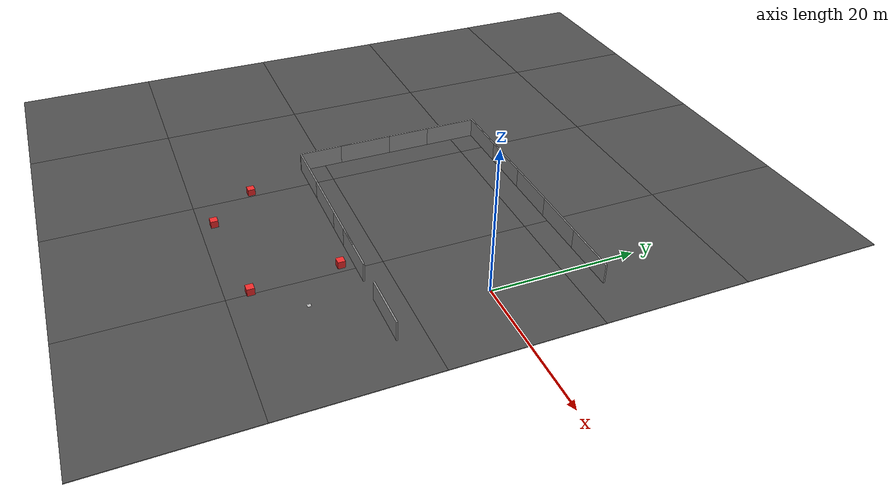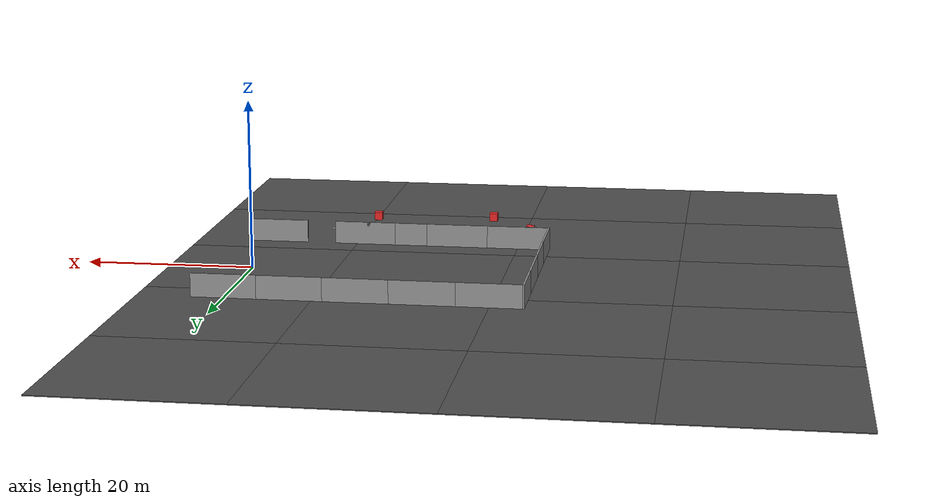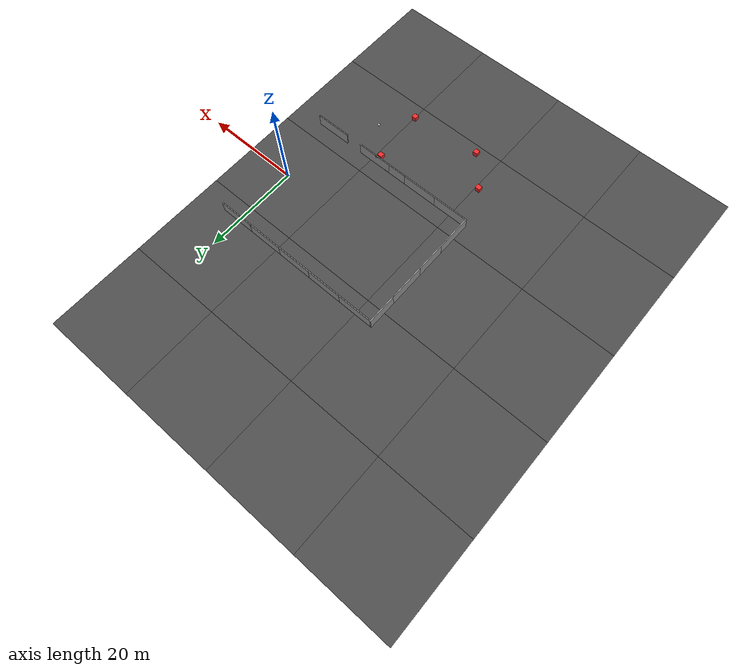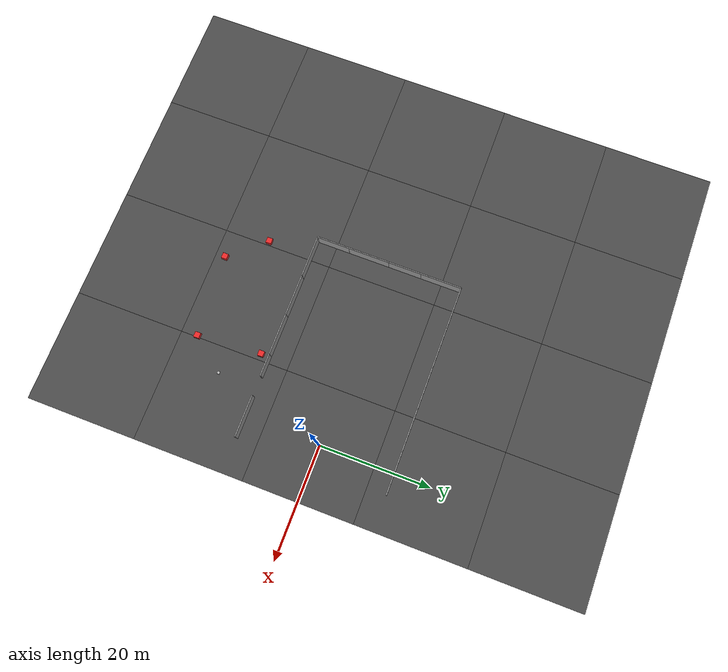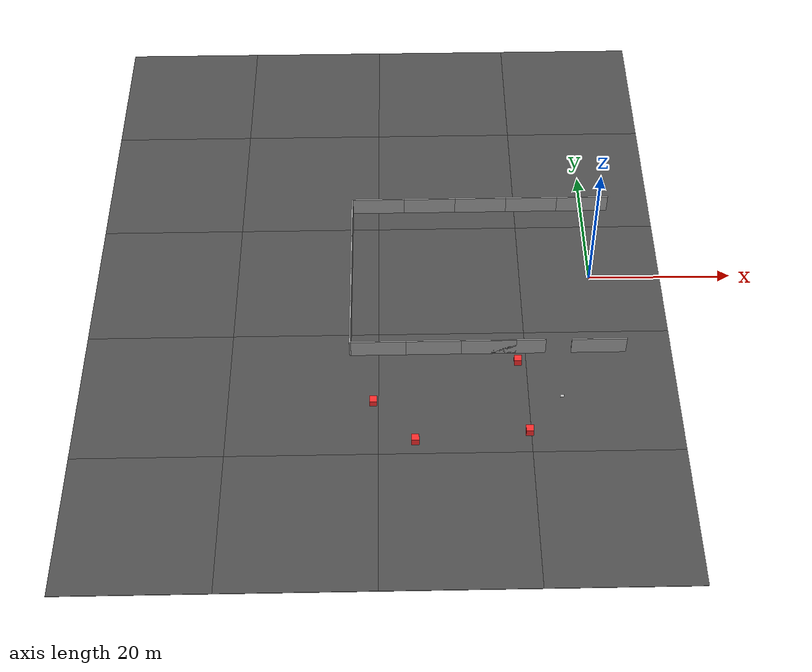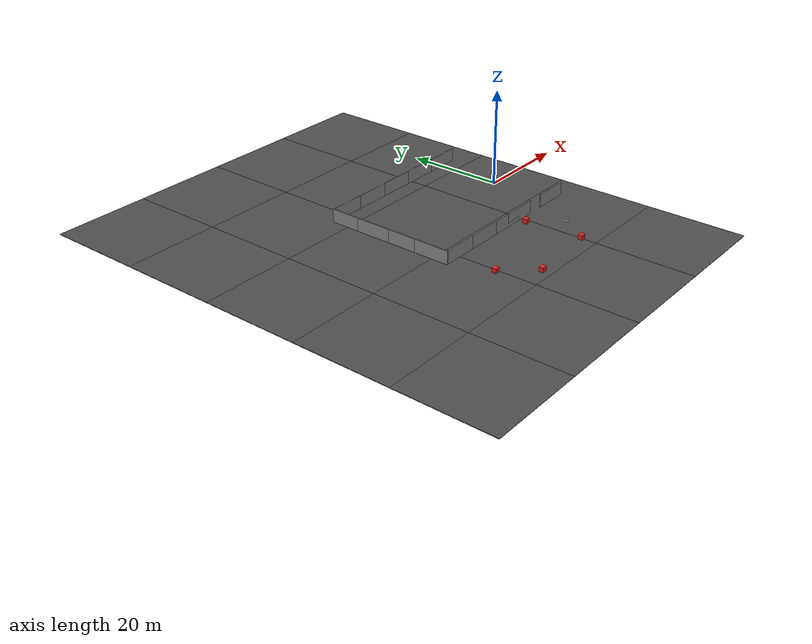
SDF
<sdf version="1.6">
 <world name="default">
  <model name="grey_wall">
   <static>1</static>
   <link name="link">
    <pose>0 0 1.4 0 -0 0</pose>
    <collision name="collision"><geometry><box><size>7.5 0.2 2.8</size></box></geometry></collision>
    <visual name="visual">
     <cast_shadows>0</cast_shadows>
     <geometry><box><size>7.5 0.2 2.8</size></box></geometry>
     <material>
      <script>
       <uri>model://grey_wall/materials/scripts</uri>
       <uri>model://grey_wall/materials/textures</uri>
       <name>vrc/grey_wall</name>
      </script>
     </material>
    </visual>
   </link>
   <pose>0 -13.5 0 0 -0 0</pose>
  </model>
  <model name="grey_wall_1">
   <static>1</static>
   <link name="link">
    <pose>0 0 1.4 0 -0 0</pose>
    <collision name="collision"><geometry><box><size>7.5 0.2 2.8</size></box></geometry></collision>
    <visual name="visual">
     <cast_shadows>0</cast_shadows>
     <geometry><box><size>7.5 0.2 2.8</size></box></geometry>
     <material>
      <script>
       <uri>model://grey_wall/materials/scripts</uri>
       <uri>model://grey_wall/materials/textures</uri>
       <name>vrc/grey_wall</name>
      </script>
     </material>
    </visual>
   </link>
   <pose>-11 -13.5 0 0 -0 0</pose>
  </model>
  <model name="grey_wall_3">
   <static>1</static>
   <link name="link">
    <pose>0 0 1.4 0 -0 0</pose>
    <collision name="collision"><geometry><box><size>7.5 0.2 2.8</size></box></geometry></collision>
    <visual name="visual">
     <cast_shadows>0</cast_shadows>
     <geometry><box><size>7.5 0.2 2.8</size></box></geometry>
     <material>
      <script>
       <uri>model://grey_wall/materials/scripts</uri>
       <uri>model://grey_wall/materials/textures</uri>
       <name>vrc/grey_wall</name>
      </script>
     </material>
    </visual>
   </link>
   <pose>0 13.5 0 0 -0 0</pose>
  </model>
  <model name="grey_wall_4">
   <static>1</static>
   <link name="link">
    <pose>0 0 1.4 0 -0 0</pose>
    <collision name="collision"><geometry><box><size>7.5 0.2 2.8</size></box></geometry></collision>
    <visual name="visual">
     <cast_shadows>0</cast_shadows>
     <geometry><box><size>7.5 0.2 2.8</size></box></geometry>
     <material>
      <script>
       <uri>model://grey_wall/materials/scripts</uri>
       <uri>model://grey_wall/materials/textures</uri>
       <name>vrc/grey_wall</name>
      </script>
     </material>
    </visual>
   </link>
   <pose>-7.5 13.5 0 0 -0 0</pose>
  </model>
  <model name="grey_wall_8">
   <static>1</static>
   <link name="link">
    <pose>0 0 1.4 0 -0 0</pose>
    <collision name="collision"><geometry><box><size>7.5 0.2 2.8</size></box></geometry></collision>
    <visual name="visual">
     <cast_shadows>0</cast_shadows>
     <geometry><box><size>7.5 0.2 2.8</size></box></geometry>
     <material>
      <script>
       <uri>model://grey_wall/materials/scripts</uri>
       <uri>model://grey_wall/materials/textures</uri>
       <name>vrc/grey_wall</name>
      </script>
     </material>
    </visual>
   </link>
   <pose>-15 -13.5 0 0 -0 0</pose>
  </model>
  <model name="grey_wall_9">
   <static>1</static>
   <link name="link">
    <pose>0 0 1.4 0 -0 0</pose>
    <collision name="collision"><geometry><box><size>7.5 0.2 2.8</size></box></geometry></collision>
    <visual name="visual">
     <cast_shadows>0</cast_shadows>
     <geometry><box><size>7.5 0.2 2.8</size></box></geometry>
     <material>
      <script>
       <uri>model://grey_wall/materials/scripts</uri>
       <uri>model://grey_wall/materials/textures</uri>
       <name>vrc/grey_wall</name>
      </script>
     </material>
    </visual>
   </link>
   <pose>-22.5 -13.5 0 0 -0 0</pose>
  </model>
  <model name="grey_wall_10">
   <static>1</static>
   <link name="link">
    <pose>0 0 1.4 0 -0 0</pose>
    <collision name="collision"><geometry><box><size>7.5 0.2 2.8</size></box></geometry></collision>
    <visual name="visual">
     <cast_shadows>0</cast_shadows>
     <geometry><box><size>7.5 0.2 2.8</size></box></geometry>
     <material>
      <script>
       <uri>model://grey_wall/materials/scripts</uri>
       <uri>model://grey_wall/materials/textures</uri>
       <name>vrc/grey_wall</name>
      </script>
     </material>
    </visual>
   </link>
   <pose>-30 -13.5 0 0 -0 0</pose>
  </model>
  <model name="grey_wall_14">
   <static>1</static>
   <link name="link">
    <pose>0 0 1.4 0 -0 0</pose>
    <collision name="collision"><geometry><box><size>7.5 0.2 2.8</size></box></geometry></collision>
    <visual name="visual">
     <cast_shadows>0</cast_shadows>
     <geometry><box><size>7.5 0.2 2.8</size></box></geometry>
     <material>
      <script>
       <uri>model://grey_wall/materials/scripts</uri>
       <uri>model://grey_wall/materials/textures</uri>
       <name>vrc/grey_wall</name>
      </script>
     </material>
    </visual>
   </link>
   <pose>-15 13.5 0 0 -0 0</pose>
  </model>
  <model name="grey_wall_15">
   <static>1</static>
   <link name="link">
    <pose>0 0 1.4 0 -0 0</pose>
    <collision name="collision"><geometry><box><size>7.5 0.2 2.8</size></box></geometry></collision>
    <visual name="visual">
     <cast_shadows>0</cast_shadows>
     <geometry><box><size>7.5 0.2 2.8</size></box></geometry>
     <material>
      <script>
       <uri>model://grey_wall/materials/scripts</uri>
       <uri>model://grey_wall/materials/textures</uri>
       <name>vrc/grey_wall</name>
      </script>
     </material>
    </visual>
   </link>
   <pose>-22.5 13.5 0 0 -0 0</pose>
  </model>
  <model name="grey_wall_16">
   <static>1</static>
   <link name="link">
    <pose>0 0 1.4 0 -0 0</pose>
    <collision name="collision"><geometry><box><size>7.5 0.2 2.8</size></box></geometry></collision>
    <visual name="visual">
     <cast_shadows>0</cast_shadows>
     <geometry><box><size>7.5 0.2 2.8</size></box></geometry>
     <material>
      <script>
       <uri>model://grey_wall/materials/scripts</uri>
       <uri>model://grey_wall/materials/textures</uri>
       <name>vrc/grey_wall</name>
      </script>
     </material>
    </visual>
   </link>
   <pose>-30 13.5 0 0 -0 0</pose>
  </model>
  <model name="grey_wall_21">
   <static>1</static>
   <link name="link">
    <pose>0 0 1.4 0 -0 0</pose>
    <collision name="collision"><geometry><box><size>7.5 0.2 2.8</size></box></geometry></collision>
    <visual name="visual">
     <cast_shadows>0</cast_shadows>
     <geometry><box><size>7.5 0.2 2.8</size></box></geometry>
     <material>
      <script>
       <uri>model://grey_wall/materials/scripts</uri>
       <uri>model://grey_wall/materials/textures</uri>
       <name>vrc/grey_wall</name>
      </script>
     </material>
    </visual>
   </link>
   <pose>-33.85 3.75 0 0 -0 1.5708</pose>
  </model>
  <model name="grey_wall_22">
   <static>1</static>
   <link name="link">
    <pose>0 0 1.4 0 -0 0</pose>
    <collision name="collision"><geometry><box><size>7.5 0.2 2.8</size></box></geometry></collision>
    <visual name="visual">
     <cast_shadows>0</cast_shadows>
     <geometry><box><size>7.5 0.2 2.8</size></box></geometry>
     <material>
      <script>
       <uri>model://grey_wall/materials/scripts</uri>
       <uri>model://grey_wall/materials/textures</uri>
       <name>vrc/grey_wall</name>
      </script>
     </material>
    </visual>
   </link>
   <pose>-33.85 9.85 0 0 -0 1.5708</pose>
  </model>
  <model name="grey_wall_23">
   <static>1</static>
   <link name="link">
    <pose>0 0 1.4 0 -0 0</pose>
    <collision name="collision"><geometry><box><size>7.5 0.2 2.8</size></box></geometry></collision>
    <visual name="visual">
     <cast_shadows>0</cast_shadows>
     <geometry><box><size>7.5 0.2 2.8</size></box></geometry>
     <material>
      <script>
       <uri>model://grey_wall/materials/scripts</uri>
       <uri>model://grey_wall/materials/textures</uri>
       <name>vrc/grey_wall</name>
      </script>
     </material>
    </visual>
   </link>
   <pose>-33.85 -3.75 0 0 -0 1.5708</pose>
  </model>
  <model name="grey_wall_24">
   <static>1</static>
   <link name="link">
    <pose>0 0 1.4 0 -0 0</pose>
    <collision name="collision"><geometry><box><size>7.5 0.2 2.8</size></box></geometry></collision>
    <visual name="visual">
     <cast_shadows>0</cast_shadows>
     <geometry><box><size>7.5 0.2 2.8</size></box></geometry>
     <material>
      <script>
       <uri>model://grey_wall/materials/scripts</uri>
       <uri>model://grey_wall/materials/textures</uri>
       <name>vrc/grey_wall</name>
      </script>
     </material>
    </visual>
   </link>
   <pose>-33.85 -9.85 0 0 -0 1.5708</pose>
  </model>
  <model name="asphalt_plane">
   <static>1</static>
   <link name="link">
    <collision name="collision"><geometry><box><size>20 20 0.1</size></box></geometry></collision>
    <visual name="visual">
     <cast_shadows>0</cast_shadows>
     <geometry><box><size>20 20 0.1</size></box></geometry>
     <material>
      <script>
       <uri>model://asphalt_plane/materials/scripts</uri>
       <uri>model://asphalt_plane/materials/textures</uri>
       <name>vrc/asphalt</name>
      </script>
     </material>
    </visual>
   </link>
  </model>
  <model name="asphalt_plane_0">
   <static>1</static>
   <link name="link">
    <collision name="collision"><geometry><box><size>20 20 0.1</size></box></geometry></collision>
    <visual name="visual">
     <cast_shadows>0</cast_shadows>
     <geometry><box><size>20 20 0.1</size></box></geometry>
     <material>
      <script>
       <uri>model://asphalt_plane/materials/scripts</uri>
       <uri>model://asphalt_plane/materials/textures</uri>
       <name>vrc/asphalt</name>
      </script>
     </material>
    </visual>
   </link>
   <pose>-20 0 0 0 -0 0</pose>
  </model>
  <model name="asphalt_plane_1">
   <static>1</static>
   <link name="link">
    <collision name="collision"><geometry><box><size>20 20 0.1</size></box></geometry></collision>
    <visual name="visual">
     <cast_shadows>0</cast_shadows>
     <geometry><box><size>20 20 0.1</size></box></geometry>
     <material>
      <script>
       <uri>model://asphalt_plane/materials/scripts</uri>
       <uri>model://asphalt_plane/materials/textures</uri>
       <name>vrc/asphalt</name>
      </script>
     </material>
    </visual>
   </link>
   <pose>-40 0 0 0 -0 0</pose>
  </model>
  <model name="asphalt_plane_4">
   <static>1</static>
   <link name="link">
    <collision name="collision"><geometry><box><size>20 20 0.1</size></box></geometry></collision>
    <visual name="visual">
     <cast_shadows>0</cast_shadows>
     <geometry><box><size>20 20 0.1</size></box></geometry>
     <material>
      <script>
       <uri>model://asphalt_plane/materials/scripts</uri>
       <uri>model://asphalt_plane/materials/textures</uri>
       <name>vrc/asphalt</name>
      </script>
     </material>
    </visual>
   </link>
   <pose>0 -20 0 0 -0 0</pose>
  </model>
  <model name="asphalt_plane_5">
   <static>1</static>
   <link name="link">
    <collision name="collision"><geometry><box><size>20 20 0.1</size></box></geometry></collision>
    <visual name="visual">
     <cast_shadows>0</cast_shadows>
     <geometry><box><size>20 20 0.1</size></box></geometry>
     <material>
      <script>
       <uri>model://asphalt_plane/materials/scripts</uri>
       <uri>model://asphalt_plane/materials/textures</uri>
       <name>vrc/asphalt</name>
      </script>
     </material>
    </visual>
   </link>
   <pose>-20 -20 0 0 -0 0</pose>
  </model>
  <model name="asphalt_plane_6">
   <static>1</static>
   <link name="link">
    <collision name="collision"><geometry><box><size>20 20 0.1</size></box></geometry></collision>
    <visual name="visual">
     <cast_shadows>0</cast_shadows>
     <geometry><box><size>20 20 0.1</size></box></geometry>
     <material>
      <script>
       <uri>model://asphalt_plane/materials/scripts</uri>
       <uri>model://asphalt_plane/materials/textures</uri>
       <name>vrc/asphalt</name>
      </script>
     </material>
    </visual>
   </link>
   <pose>-40 -20 0 0 -0 0</pose>
  </model>
  <model name="asphalt_plane_9">
   <static>1</static>
   <link name="link">
    <collision name="collision"><geometry><box><size>20 20 0.1</size></box></geometry></collision>
    <visual name="visual">
     <cast_shadows>0</cast_shadows>
     <geometry><box><size>20 20 0.1</size></box></geometry>
     <material>
      <script>
       <uri>model://asphalt_plane/materials/scripts</uri>
       <uri>model://asphalt_plane/materials/textures</uri>
       <name>vrc/asphalt</name>
      </script>
     </material>
    </visual>
   </link>
   <pose>-40 20 0 0 -0 0</pose>
  </model>
  <model name="asphalt_plane_10">
   <static>1</static>
   <link name="link">
    <collision name="collision"><geometry><box><size>20 20 0.1</size></box></geometry></collision>
    <visual name="visual">
     <cast_shadows>0</cast_shadows>
     <geometry><box><size>20 20 0.1</size></box></geometry>
     <material>
      <script>
       <uri>model://asphalt_plane/materials/scripts</uri>
       <uri>model://asphalt_plane/materials/textures</uri>
       <name>vrc/asphalt</name>
      </script>
     </material>
    </visual>
   </link>
   <pose>-20 20 0 0 -0 0</pose>
  </model>
  <model name="asphalt_plane_11">
   <static>1</static>
   <link name="link">
    <collision name="collision"><geometry><box><size>20 20 0.1</size></box></geometry></collision>
    <visual name="visual">
     <cast_shadows>0</cast_shadows>
     <geometry><box><size>20 20 0.1</size></box></geometry>
     <material>
      <script>
       <uri>model://asphalt_plane/materials/scripts</uri>
       <uri>model://asphalt_plane/materials/textures</uri>
       <name>vrc/asphalt</name>
      </script>
     </material>
    </visual>
   </link>
   <pose>0 20 0 0 -0 0</pose>
  </model>
  <model name="yellow_point">
   <static>1</static>
   <link name="link">
    <collision name="collision">
     <geometry><plane><normal>0 0 1</normal><size>0.5 0.5</size></plane></geometry>
     <surface><friction><ode><mu>100</mu><mu2>50</mu2></ode></friction></surface>
    </collision>
    <visual name="visual">
     <cast_shadows>0</cast_shadows>
     <geometry><plane><normal>0 0 1</normal><size>0.5 0.5</size></plane></geometry>
     <material>
      <script>
       <uri>model://yellow_point/materials/scripts</uri>
       <uri>model://yellow_point/materials/textures/</uri>
       <name>MyGroundPlane/Image</name>
      </script>
     </material>
    </visual>
   </link>
   <pose>-5.5 -21 0.06 0 -0 0</pose>
  </model>
  <model name="asphalt_plane_20">
   <static>1</static>
   <link name="link">
    <collision name="collision"><geometry><box><size>20 20 0.1</size></box></geometry></collision>
    <visual name="visual">
     <cast_shadows>0</cast_shadows>
     <geometry><box><size>20 20 0.1</size></box></geometry>
     <material>
      <script>
       <uri>model://asphalt_plane/materials/scripts</uri>
       <uri>model://asphalt_plane/materials/textures</uri>
       <name>vrc/asphalt</name>
      </script>
     </material>
    </visual>
   </link>
   <pose>0 -40 0 0 -0 0</pose>
  </model>
  <model name="asphalt_plane_21">
   <static>1</static>
   <link name="link">
    <collision name="collision"><geometry><box><size>20 20 0.1</size></box></geometry></collision>
    <visual name="visual">
     <cast_shadows>0</cast_shadows>
     <geometry><box><size>20 20 0.1</size></box></geometry>
     <material>
      <script>
       <uri>model://asphalt_plane/materials/scripts</uri>
       <uri>model://asphalt_plane/materials/textures</uri>
       <name>vrc/asphalt</name>
      </script>
     </material>
    </visual>
   </link>
   <pose>-20 -40 0 0 -0 0</pose>
  </model>
  <model name="asphalt_plane_22">
   <static>1</static>
   <link name="link">
    <collision name="collision"><geometry><box><size>20 20 0.1</size></box></geometry></collision>
    <visual name="visual">
     <cast_shadows>0</cast_shadows>
     <geometry><box><size>20 20 0.1</size></box></geometry>
     <material>
      <script>
       <uri>model://asphalt_plane/materials/scripts</uri>
       <uri>model://asphalt_plane/materials/textures</uri>
       <name>vrc/asphalt</name>
      </script>
     </material>
    </visual>
   </link>
   <pose>-40 -40 0 0 -0 0</pose>
  </model>
  <model name="asphalt_plane_23">
   <static>1</static>
   <link name="link">
    <collision name="collision"><geometry><box><size>20 20 0.1</size></box></geometry></collision>
    <visual name="visual">
     <cast_shadows>0</cast_shadows>
     <geometry><box><size>20 20 0.1</size></box></geometry>
     <material>
      <script>
       <uri>model://asphalt_plane/materials/scripts</uri>
       <uri>model://asphalt_plane/materials/textures</uri>
       <name>vrc/asphalt</name>
      </script>
     </material>
    </visual>
   </link>
   <pose>-60 -40 0 0 -0 0</pose>
  </model>
  <model name="asphalt_plane_24">
   <static>1</static>
   <link name="link">
    <collision name="collision"><geometry><box><size>20 20 0.1</size></box></geometry></collision>
    <visual name="visual">
     <cast_shadows>0</cast_shadows>
     <geometry><box><size>20 20 0.1</size></box></geometry>
     <material>
      <script>
       <uri>model://asphalt_plane/materials/scripts</uri>
       <uri>model://asphalt_plane/materials/textures</uri>
       <name>vrc/asphalt</name>
      </script>
     </material>
    </visual>
   </link>
   <pose>-60 -20 0 0 -0 0</pose>
  </model>
  <model name="asphalt_plane_25">
   <static>1</static>
   <link name="link">
    <collision name="collision"><geometry><box><size>20 20 0.1</size></box></geometry></collision>
    <visual name="visual">
     <cast_shadows>0</cast_shadows>
     <geometry><box><size>20 20 0.1</size></box></geometry>
     <material>
      <script>
       <uri>model://asphalt_plane/materials/scripts</uri>
       <uri>model://asphalt_plane/materials/textures</uri>
       <name>vrc/asphalt</name>
      </script>
     </material>
    </visual>
   </link>
   <pose>-60 0 0 0 -0 0</pose>
  </model>
  <model name="asphalt_plane_26">
   <static>1</static>
   <link name="link">
    <collision name="collision"><geometry><box><size>20 20 0.1</size></box></geometry></collision>
    <visual name="visual">
     <cast_shadows>0</cast_shadows>
     <geometry><box><size>20 20 0.1</size></box></geometry>
     <material>
      <script>
       <uri>model://asphalt_plane/materials/scripts</uri>
       <uri>model://asphalt_plane/materials/textures</uri>
       <name>vrc/asphalt</name>
      </script>
     </material>
    </visual>
   </link>
   <pose>-60 20 0 0 -0 0</pose>
  </model>
  <model name="asphalt_plane_27">
   <static>1</static>
   <link name="link">
    <collision name="collision"><geometry><box><size>20 20 0.1</size></box></geometry></collision>
    <visual name="visual">
     <cast_shadows>0</cast_shadows>
     <geometry><box><size>20 20 0.1</size></box></geometry>
     <material>
      <script>
       <uri>model://asphalt_plane/materials/scripts</uri>
       <uri>model://asphalt_plane/materials/textures</uri>
       <name>vrc/asphalt</name>
      </script>
     </material>
    </visual>
   </link>
   <pose>-60 40 0 0 -0 0</pose>
  </model>
  <model name="asphalt_plane_28">
   <static>1</static>
   <link name="link">
    <collision name="collision"><geometry><box><size>20 20 0.1</size></box></geometry></collision>
    <visual name="visual">
     <cast_shadows>0</cast_shadows>
     <geometry><box><size>20 20 0.1</size></box></geometry>
     <material>
      <script>
       <uri>model://asphalt_plane/materials/scripts</uri>
       <uri>model://asphalt_plane/materials/textures</uri>
       <name>vrc/asphalt</name>
      </script>
     </material>
    </visual>
   </link>
   <pose>-40 40 0 0 -0 0</pose>
  </model>
  <model name="asphalt_plane_29">
   <static>1</static>
   <link name="link">
    <collision name="collision"><geometry><box><size>20 20 0.1</size></box></geometry></collision>
    <visual name="visual">
     <cast_shadows>0</cast_shadows>
     <geometry><box><size>20 20 0.1</size></box></geometry>
     <material>
      <script>
       <uri>model://asphalt_plane/materials/scripts</uri>
       <uri>model://asphalt_plane/materials/textures</uri>
       <name>vrc/asphalt</name>
      </script>
     </material>
    </visual>
   </link>
   <pose>-20 40 0 0 -0 0</pose>
  </model>
  <model name="asphalt_plane_30">
   <static>1</static>
   <link name="link">
    <collision name="collision"><geometry><box><size>20 20 0.1</size></box></geometry></collision>
    <visual name="visual">
     <cast_shadows>0</cast_shadows>
     <geometry><box><size>20 20 0.1</size></box></geometry>
     <material>
      <script>
       <uri>model://asphalt_plane/materials/scripts</uri>
       <uri>model://asphalt_plane/materials/textures</uri>
       <name>vrc/asphalt</name>
      </script>
     </material>
    </visual>
   </link>
   <pose>0 40 0 0 -0 0</pose>
  </model>
  <model name="54m_redline_0">
   <static>1</static>
   <link name="link">
    <collision name="collision">
     <geometry><plane><normal>0 0 1</normal><size>59.3 0.1</size></plane></geometry>
     <surface><friction><ode><mu>100</mu><mu2>50</mu2></ode></friction></surface>
    </collision>
    <visual name="visual">
     <cast_shadows>0</cast_shadows>
     <geometry><plane><normal>0 0 1</normal><size>59.3 0.1</size></plane></geometry>
     <material>
      <script>
       <uri>model://54m_redline/materials/scripts</uri>
       <uri>model://54m_redline/materials/textures/</uri>
       <name>MyGroundPlane/Image</name>
      </script>
     </material>
    </visual>
   </link>
   <pose>-49 -2.6 0.06 0 -0 1.5707</pose>
  </model>
  <model name="unit_box_0_clone_clone_0">
   <link name="link">
    <inertial>
     <mass>1</mass>
     <inertia>
      <ixx>0.166667</ixx>
      <ixy>0</ixy>
      <ixz>0</ixz>
      <iyy>0.166667</iyy>
      <iyz>0</iyz>
      <izz>0.166667</izz>
     </inertia>
    </inertial>
    <visual name="visual">
     <geometry><box><size>1 1 1</size></box></geometry>
     <material>
      <script><name>Gazebo/Grey</name><uri>file://media/materials/scripts/gazebo.material</uri></script>
      <shader type="pixel"><normal_map>__default__</normal_map></shader>
      <ambient>0.937 0.161 0.161 1</ambient>
      <diffuse>0.937 0.161 0.161 1</diffuse>
      <specular>0.937 0.161 0.161 1</specular>
      <emissive>0.937 0.161 0.161 1</emissive>
     </material>
    </visual>
    <collision name="collision">
     <geometry><box><size>1 1 1</size></box></geometry>
     <surface>
      <friction>
       <ode><mu>1</mu><mu2>1</mu2><fdir1>0 0 0</fdir1><slip1>0</slip1><slip2>0</slip2></ode>
       <torsional>
        <coefficient>1</coefficient>
        <patch_radius>0</patch_radius>
        <surface_radius>0</surface_radius>
        <use_patch_radius>1</use_patch_radius>
        <ode><slip>0</slip></ode>
       </torsional>
      </friction>
      <bounce><restitution_coefficient>0</restitution_coefficient><threshold>1e+06</threshold></bounce>
      <contact>
       <collide_without_contact>0</collide_without_contact>
       <collide_without_contact_bitmask>1</collide_without_contact_bitmask>
       <collide_bitmask>1</collide_bitmask>
       <ode>
        <soft_cfm>0</soft_cfm>
        <soft_erp>0.2</soft_erp>
        <kp>1e+13</kp>
        <kd>1</kd>
        <max_vel>0.01</max_vel>
        <min_depth>0</min_depth>
       </ode>
       <bullet>
        <split_impulse>1</split_impulse>
        <split_impulse_penetration_threshold>-0.01</split_impulse_penetration_threshold>
        <soft_cfm>0</soft_cfm>
        <soft_erp>0.2</soft_erp>
        <kp>1e+13</kp>
        <kd>1</kd>
       </bullet>
      </contact>
     </surface>
    </collision>
   </link>
   <static>0</static>
   <pose>-30.6903 -21.7797 0.5 0 -0 0</pose>
  </model>
  <model name="unit_box_0_clone_clone_4_clone">
   <link name="link">
    <inertial>
     <mass>1</mass>
     <inertia>
      <ixx>0.166667</ixx>
      <ixy>0</ixy>
      <ixz>0</ixz>
      <iyy>0.166667</iyy>
      <iyz>0</iyz>
      <izz>0.166667</izz>
     </inertia>
    </inertial>
    <visual name="visual">
     <geometry><box><size>1 1 1</size></box></geometry>
     <material>
      <script><name>Gazebo/Grey</name><uri>file://media/materials/scripts/gazebo.material</uri></script>
      <shader type="pixel"><normal_map>__default__</normal_map></shader>
      <ambient>0.937 0.161 0.161 1</ambient>
      <diffuse>0.937 0.161 0.161 1</diffuse>
      <specular>0.937 0.161 0.161 1</specular>
      <emissive>0.937 0.161 0.161 1</emissive>
     </material>
    </visual>
    <collision name="collision">
     <geometry><box><size>1 1 1</size></box></geometry>
     <surface>
      <friction>
       <ode><mu>1</mu><mu2>1</mu2><fdir1>0 0 0</fdir1><slip1>0</slip1><slip2>0</slip2></ode>
       <torsional>
        <coefficient>1</coefficient>
        <patch_radius>0</patch_radius>
        <surface_radius>0</surface_radius>
        <use_patch_radius>1</use_patch_radius>
        <ode><slip>0</slip></ode>
       </torsional>
      </friction>
      <bounce><restitution_coefficient>0</restitution_coefficient><threshold>1e+06</threshold></bounce>
      <contact>
       <collide_without_contact>0</collide_without_contact>
       <collide_without_contact_bitmask>1</collide_without_contact_bitmask>
       <collide_bitmask>1</collide_bitmask>
       <ode>
        <soft_cfm>0</soft_cfm>
        <soft_erp>0.2</soft_erp>
        <kp>1e+13</kp>
        <kd>1</kd>
        <max_vel>0.01</max_vel>
        <min_depth>0</min_depth>
       </ode>
       <bullet>
        <split_impulse>1</split_impulse>
        <split_impulse_penetration_threshold>-0.01</split_impulse_penetration_threshold>
        <soft_cfm>0</soft_cfm>
        <soft_erp>0.2</soft_erp>
        <kp>1e+13</kp>
        <kd>1</kd>
       </bullet>
      </contact>
     </surface>
    </collision>
   </link>
   <static>0</static>
   <pose>-10.2282 -26.9155 0.549995 0 1e-05 -2e-06</pose>
  </model>
  <model name="unit_box_0_clone_clone_4_clone_0">
   <link name="link">
    <inertial>
     <mass>1</mass>
     <inertia>
      <ixx>0.166667</ixx>
      <ixy>0</ixy>
      <ixz>0</ixz>
      <iyy>0.166667</iyy>
      <iyz>0</iyz>
      <izz>0.166667</izz>
     </inertia>
    </inertial>
    <visual name="visual">
     <geometry><box><size>1 1 1</size></box></geometry>
     <material>
      <script><name>Gazebo/Grey</name><uri>file://media/materials/scripts/gazebo.material</uri></script>
      <shader type="pixel"><normal_map>__default__</normal_map></shader>
      <ambient>0.937 0.161 0.161 1</ambient>
      <diffuse>0.937 0.161 0.161 1</diffuse>
      <specular>0.937 0.161 0.161 1</specular>
      <emissive>0.937 0.161 0.161 1</emissive>
     </material>
    </visual>
    <collision name="collision">
     <geometry><box><size>1 1 1</size></box></geometry>
     <surface>
      <friction>
       <ode><mu>1</mu><mu2>1</mu2><fdir1>0 0 0</fdir1><slip1>0</slip1><slip2>0</slip2></ode>
       <torsional>
        <coefficient>1</coefficient>
        <patch_radius>0</patch_radius>
        <surface_radius>0</surface_radius>
        <use_patch_radius>1</use_patch_radius>
        <ode><slip>0</slip></ode>
       </torsional>
      </friction>
      <bounce><restitution_coefficient>0</restitution_coefficient><threshold>1e+06</threshold></bounce>
      <contact>
       <collide_without_contact>0</collide_without_contact>
       <collide_without_contact_bitmask>1</collide_without_contact_bitmask>
       <collide_bitmask>1</collide_bitmask>
       <ode>
        <soft_cfm>0</soft_cfm>
        <soft_erp>0.2</soft_erp>
        <kp>1e+13</kp>
        <kd>1</kd>
        <max_vel>0.01</max_vel>
        <min_depth>0</min_depth>
       </ode>
       <bullet>
        <split_impulse>1</split_impulse>
        <split_impulse_penetration_threshold>-0.01</split_impulse_penetration_threshold>
        <soft_cfm>0</soft_cfm>
        <soft_erp>0.2</soft_erp>
        <kp>1e+13</kp>
        <kd>1</kd>
       </bullet>
      </contact>
     </surface>
    </collision>
   </link>
   <static>0</static>
   <pose>-11.0984 -15.2131 0.55 0 -0 1e-06</pose>
  </model>
  <model name="unit_box_0_clone_clone_4_clone_1">
   <link name="link">
    <inertial>
     <mass>1</mass>
     <inertia>
      <ixx>0.166667</ixx>
      <ixy>0</ixy>
      <ixz>0</ixz>
      <iyy>0.166667</iyy>
      <iyz>0</iyz>
      <izz>0.166667</izz>
     </inertia>
    </inertial>
    <visual name="visual">
     <geometry><box><size>1 1 1</size></box></geometry>
     <material>
      <script><name>Gazebo/Grey</name><uri>file://media/materials/scripts/gazebo.material</uri></script>
      <shader type="pixel"><normal_map>__default__</normal_map></shader>
      <ambient>0.937 0.161 0.161 1</ambient>
      <diffuse>0.937 0.161 0.161 1</diffuse>
      <specular>0.937 0.161 0.161 1</specular>
      <emissive>0.937 0.161 0.161 1</emissive>
     </material>
    </visual>
    <collision name="collision">
     <geometry><box><size>1 1 1</size></box></geometry>
     <surface>
      <friction>
       <ode><mu>1</mu><mu2>1</mu2><fdir1>0 0 0</fdir1><slip1>0</slip1><slip2>0</slip2></ode>
       <torsional>
        <coefficient>1</coefficient>
        <patch_radius>0</patch_radius>
        <surface_radius>0</surface_radius>
        <use_patch_radius>1</use_patch_radius>
        <ode><slip>0</slip></ode>
       </torsional>
      </friction>
      <bounce><restitution_coefficient>0</restitution_coefficient><threshold>1e+06</threshold></bounce>
      <contact>
       <collide_without_contact>0</collide_without_contact>
       <collide_without_contact_bitmask>1</collide_without_contact_bitmask>
       <collide_bitmask>1</collide_bitmask>
       <ode>
        <soft_cfm>0</soft_cfm>
        <soft_erp>0.2</soft_erp>
        <kp>1e+13</kp>
        <kd>1</kd>
        <max_vel>0.01</max_vel>
        <min_depth>0</min_depth>
       </ode>
       <bullet>
        <split_impulse>1</split_impulse>
        <split_impulse_penetration_threshold>-0.01</split_impulse_penetration_threshold>
        <soft_cfm>0</soft_cfm>
        <soft_erp>0.2</soft_erp>
        <kp>1e+13</kp>
        <kd>1</kd>
       </bullet>
      </contact>
     </surface>
    </collision>
   </link>
   <static>0</static>
   <pose>-25.1994 -28.1049 0.549996 9e-06 -0 -1e-06</pose>
  </model>
 </world>
</sdf>
